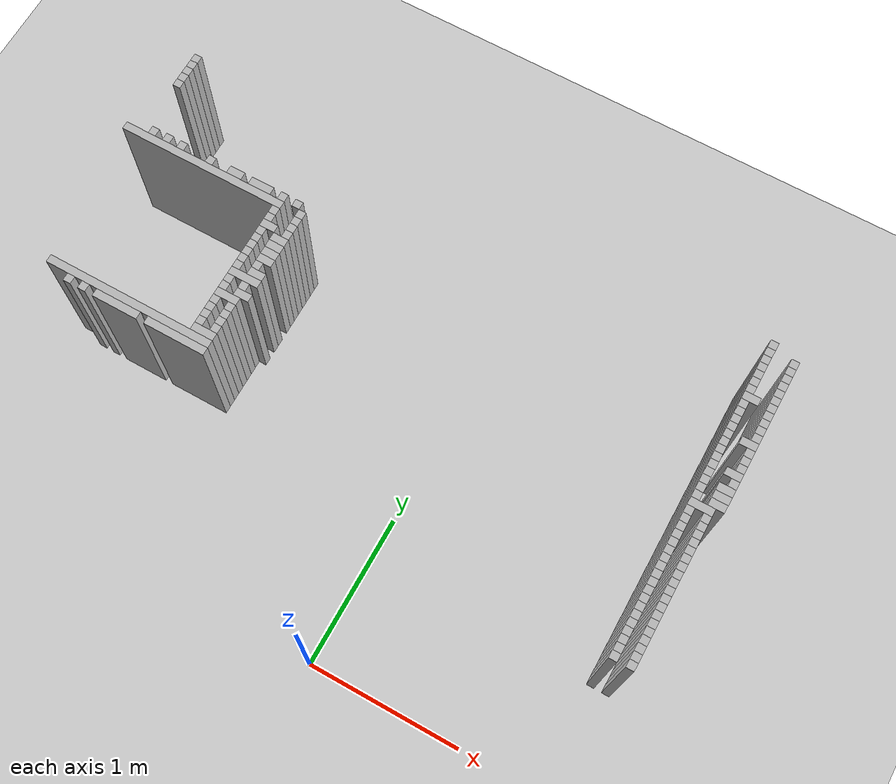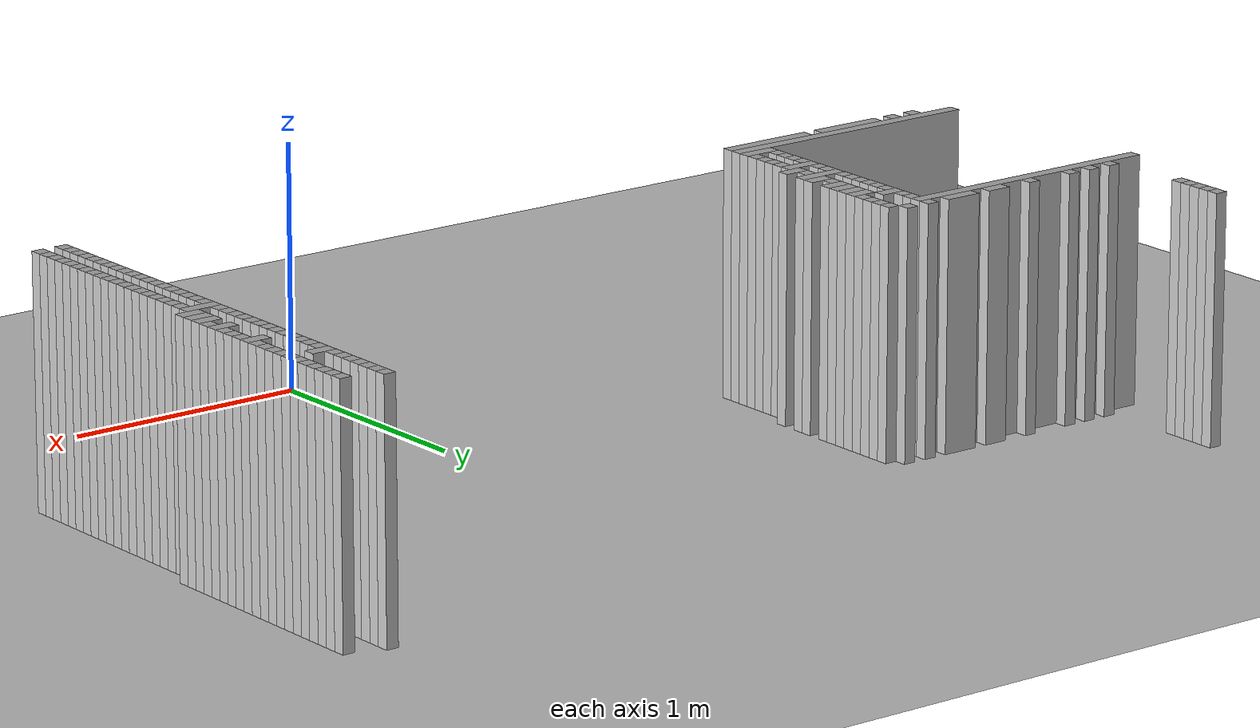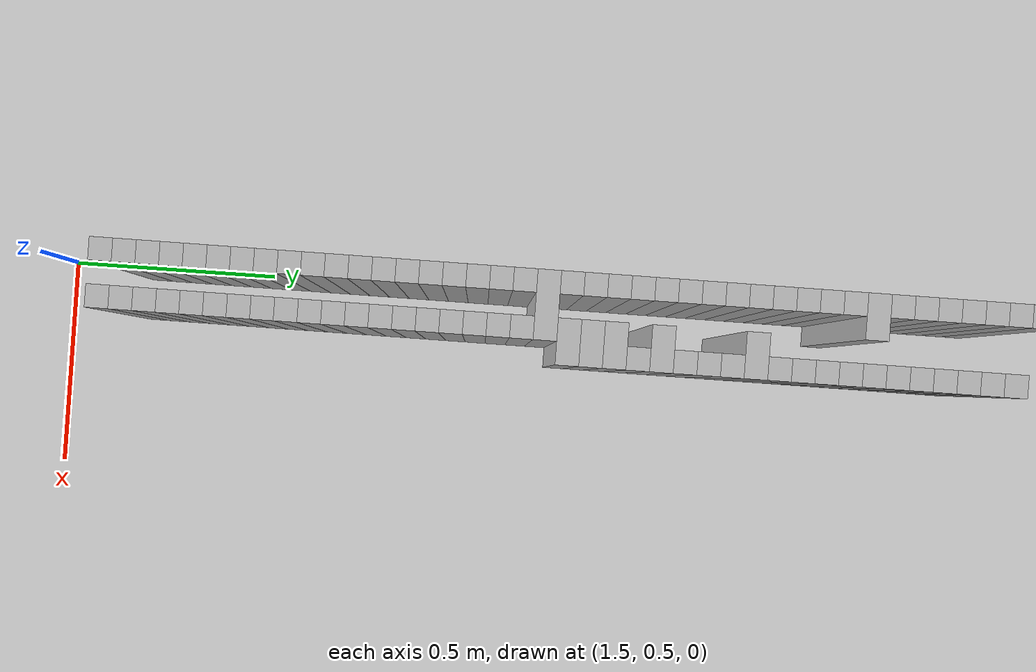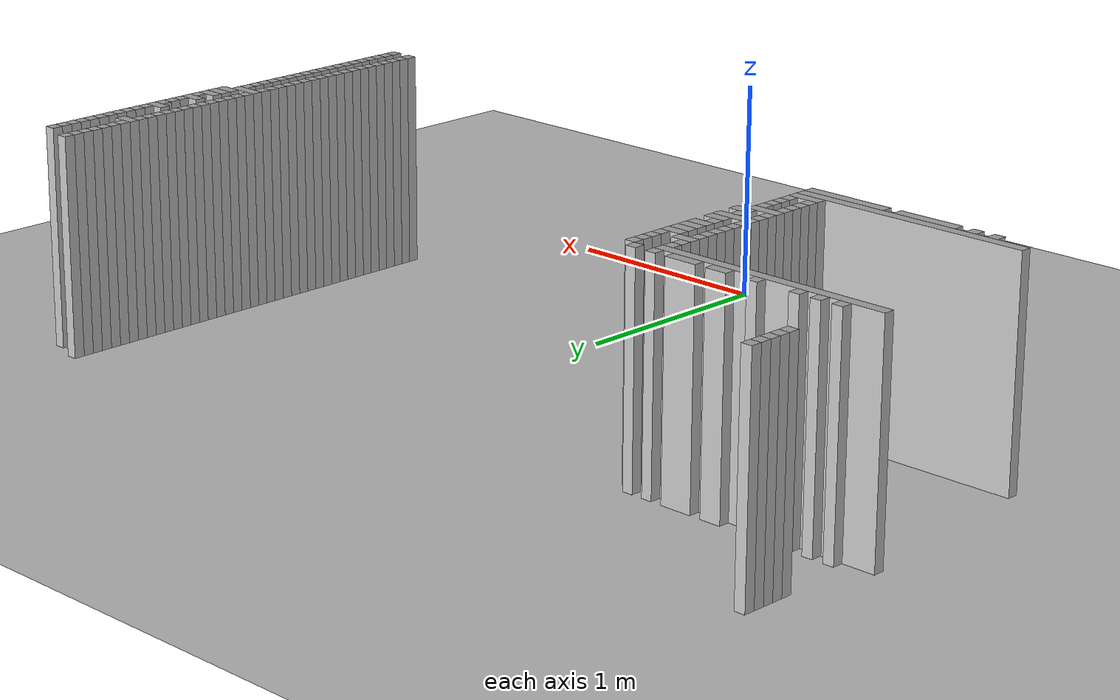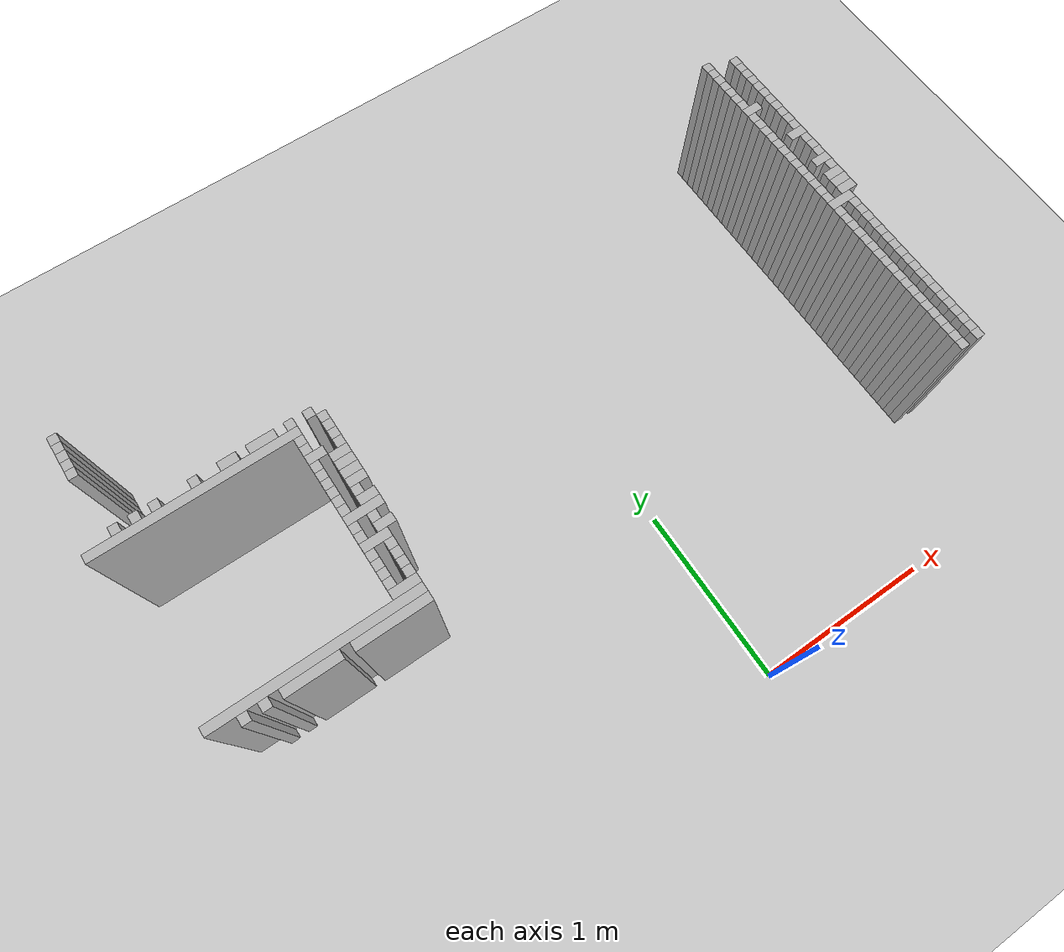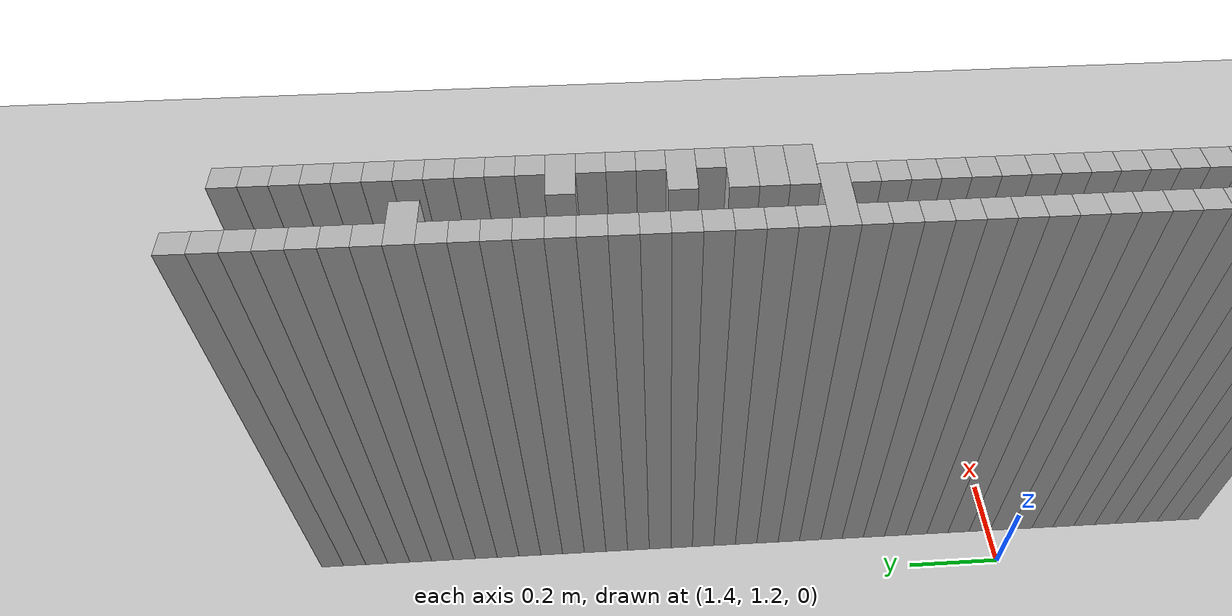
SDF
<sdf version="1.6">
 <world name="udh1_world">
  <include><uri>model://ground_plane</uri></include>
  <include><uri>model://sun</uri></include>
  <model name="wall_971">
   <static>true</static>
   <pose>-2.344999999999999 2.7200000000000006 0.5 0 0 0</pose>
   <link name="link">
    <collision name="col"><geometry><box><size>0.05 0.05 1</size></box></geometry></collision>
    <visual name="vis"><geometry><box><size>0.05 0.05 1</size></box></geometry></visual>
   </link>
  </model>
  <model name="wall_972">
   <static>true</static>
   <pose>1.5050000000000008 2.7200000000000006 0.5 0 0 0</pose>
   <link name="link">
    <collision name="col"><geometry><box><size>0.05 0.05 1</size></box></geometry></collision>
    <visual name="vis"><geometry><box><size>0.05 0.05 1</size></box></geometry></visual>
   </link>
  </model>
  <model name="wall_981">
   <static>true</static>
   <pose>-2.344999999999999 2.67 0.5 0 0 0</pose>
   <link name="link">
    <collision name="col"><geometry><box><size>0.05 0.05 1</size></box></geometry></collision>
    <visual name="vis"><geometry><box><size>0.05 0.05 1</size></box></geometry></visual>
   </link>
  </model>
  <model name="wall_982">
   <static>true</static>
   <pose>1.5050000000000008 2.67 0.5 0 0 0</pose>
   <link name="link">
    <collision name="col"><geometry><box><size>0.05 0.05 1</size></box></geometry></collision>
    <visual name="vis"><geometry><box><size>0.05 0.05 1</size></box></geometry></visual>
   </link>
  </model>
  <model name="wall_983">
   <static>true</static>
   <pose>1.6550000000000011 2.67 0.5 0 0 0</pose>
   <link name="link">
    <collision name="col"><geometry><box><size>0.05 0.05 1</size></box></geometry></collision>
    <visual name="vis"><geometry><box><size>0.05 0.05 1</size></box></geometry></visual>
   </link>
  </model>
  <model name="wall_991">
   <static>true</static>
   <pose>-2.344999999999999 2.619999999999999 0.5 0 0 0</pose>
   <link name="link">
    <collision name="col"><geometry><box><size>0.05 0.05 1</size></box></geometry></collision>
    <visual name="vis"><geometry><box><size>0.05 0.05 1</size></box></geometry></visual>
   </link>
  </model>
  <model name="wall_992">
   <static>true</static>
   <pose>1.5050000000000008 2.619999999999999 0.5 0 0 0</pose>
   <link name="link">
    <collision name="col"><geometry><box><size>0.05 0.05 1</size></box></geometry></collision>
    <visual name="vis"><geometry><box><size>0.05 0.05 1</size></box></geometry></visual>
   </link>
  </model>
  <model name="wall_993">
   <static>true</static>
   <pose>1.6550000000000011 2.619999999999999 0.5 0 0 0</pose>
   <link name="link">
    <collision name="col"><geometry><box><size>0.05 0.05 1</size></box></geometry></collision>
    <visual name="vis"><geometry><box><size>0.05 0.05 1</size></box></geometry></visual>
   </link>
  </model>
  <model name="wall_1001">
   <static>true</static>
   <pose>-2.344999999999999 2.5700000000000003 0.5 0 0 0</pose>
   <link name="link">
    <collision name="col"><geometry><box><size>0.05 0.05 1</size></box></geometry></collision>
    <visual name="vis"><geometry><box><size>0.05 0.05 1</size></box></geometry></visual>
   </link>
  </model>
  <model name="wall_1002">
   <static>true</static>
   <pose>1.5050000000000008 2.5700000000000003 0.5 0 0 0</pose>
   <link name="link">
    <collision name="col"><geometry><box><size>0.05 0.05 1</size></box></geometry></collision>
    <visual name="vis"><geometry><box><size>0.05 0.05 1</size></box></geometry></visual>
   </link>
  </model>
  <model name="wall_1003">
   <static>true</static>
   <pose>1.6550000000000011 2.5700000000000003 0.5 0 0 0</pose>
   <link name="link">
    <collision name="col"><geometry><box><size>0.05 0.05 1</size></box></geometry></collision>
    <visual name="vis"><geometry><box><size>0.05 0.05 1</size></box></geometry></visual>
   </link>
  </model>
  <model name="wall_1011">
   <static>true</static>
   <pose>-2.344999999999999 2.5199999999999996 0.5 0 0 0</pose>
   <link name="link">
    <collision name="col"><geometry><box><size>0.05 0.05 1</size></box></geometry></collision>
    <visual name="vis"><geometry><box><size>0.05 0.05 1</size></box></geometry></visual>
   </link>
  </model>
  <model name="wall_1012">
   <static>true</static>
   <pose>1.5050000000000008 2.5199999999999996 0.5 0 0 0</pose>
   <link name="link">
    <collision name="col"><geometry><box><size>0.05 0.05 1</size></box></geometry></collision>
    <visual name="vis"><geometry><box><size>0.05 0.05 1</size></box></geometry></visual>
   </link>
  </model>
  <model name="wall_1013">
   <static>true</static>
   <pose>1.6550000000000011 2.5199999999999996 0.5 0 0 0</pose>
   <link name="link">
    <collision name="col"><geometry><box><size>0.05 0.05 1</size></box></geometry></collision>
    <visual name="vis"><geometry><box><size>0.05 0.05 1</size></box></geometry></visual>
   </link>
  </model>
  <model name="wall_1022">
   <static>true</static>
   <pose>1.5050000000000008 2.4700000000000006 0.5 0 0 0</pose>
   <link name="link">
    <collision name="col"><geometry><box><size>0.05 0.05 1</size></box></geometry></collision>
    <visual name="vis"><geometry><box><size>0.05 0.05 1</size></box></geometry></visual>
   </link>
  </model>
  <model name="wall_1023">
   <static>true</static>
   <pose>1.6550000000000011 2.4700000000000006 0.5 0 0 0</pose>
   <link name="link">
    <collision name="col"><geometry><box><size>0.05 0.05 1</size></box></geometry></collision>
    <visual name="vis"><geometry><box><size>0.05 0.05 1</size></box></geometry></visual>
   </link>
  </model>
  <model name="wall_1032">
   <static>true</static>
   <pose>1.5050000000000008 2.42 0.5 0 0 0</pose>
   <link name="link">
    <collision name="col"><geometry><box><size>0.05 0.05 1</size></box></geometry></collision>
    <visual name="vis"><geometry><box><size>0.05 0.05 1</size></box></geometry></visual>
   </link>
  </model>
  <model name="wall_1033">
   <static>true</static>
   <pose>1.6550000000000011 2.42 0.5 0 0 0</pose>
   <link name="link">
    <collision name="col"><geometry><box><size>0.05 0.05 1</size></box></geometry></collision>
    <visual name="vis"><geometry><box><size>0.05 0.05 1</size></box></geometry></visual>
   </link>
  </model>
  <model name="wall_1042">
   <static>true</static>
   <pose>1.5300000000000011 2.369999999999999 0.5 0 0 0</pose>
   <link name="link">
    <collision name="col"><geometry><box><size>0.1 0.05 1</size></box></geometry></collision>
    <visual name="vis"><geometry><box><size>0.1 0.05 1</size></box></geometry></visual>
   </link>
  </model>
  <model name="wall_1043">
   <static>true</static>
   <pose>1.6550000000000011 2.369999999999999 0.5 0 0 0</pose>
   <link name="link">
    <collision name="col"><geometry><box><size>0.05 0.05 1</size></box></geometry></collision>
    <visual name="vis"><geometry><box><size>0.05 0.05 1</size></box></geometry></visual>
   </link>
  </model>
  <model name="wall_1052">
   <static>true</static>
   <pose>1.5050000000000008 2.3200000000000003 0.5 0 0 0</pose>
   <link name="link">
    <collision name="col"><geometry><box><size>0.05 0.05 1</size></box></geometry></collision>
    <visual name="vis"><geometry><box><size>0.05 0.05 1</size></box></geometry></visual>
   </link>
  </model>
  <model name="wall_1053">
   <static>true</static>
   <pose>1.6550000000000011 2.3200000000000003 0.5 0 0 0</pose>
   <link name="link">
    <collision name="col"><geometry><box><size>0.05 0.05 1</size></box></geometry></collision>
    <visual name="vis"><geometry><box><size>0.05 0.05 1</size></box></geometry></visual>
   </link>
  </model>
  <model name="wall_1062">
   <static>true</static>
   <pose>1.5050000000000008 2.2699999999999996 0.5 0 0 0</pose>
   <link name="link">
    <collision name="col"><geometry><box><size>0.05 0.05 1</size></box></geometry></collision>
    <visual name="vis"><geometry><box><size>0.05 0.05 1</size></box></geometry></visual>
   </link>
  </model>
  <model name="wall_1063">
   <static>true</static>
   <pose>1.6550000000000011 2.2699999999999996 0.5 0 0 0</pose>
   <link name="link">
    <collision name="col"><geometry><box><size>0.05 0.05 1</size></box></geometry></collision>
    <visual name="vis"><geometry><box><size>0.05 0.05 1</size></box></geometry></visual>
   </link>
  </model>
  <model name="wall_1072">
   <static>true</static>
   <pose>1.5050000000000008 2.2200000000000006 0.5 0 0 0</pose>
   <link name="link">
    <collision name="col"><geometry><box><size>0.05 0.05 1</size></box></geometry></collision>
    <visual name="vis"><geometry><box><size>0.05 0.05 1</size></box></geometry></visual>
   </link>
  </model>
  <model name="wall_1073">
   <static>true</static>
   <pose>1.6550000000000011 2.2200000000000006 0.5 0 0 0</pose>
   <link name="link">
    <collision name="col"><geometry><box><size>0.05 0.05 1</size></box></geometry></collision>
    <visual name="vis"><geometry><box><size>0.05 0.05 1</size></box></geometry></visual>
   </link>
  </model>
  <model name="wall_1081">
   <static>true</static>
   <pose>-2.294999999999999 2.17 0.5 0 0 0</pose>
   <link name="link">
    <collision name="col"><geometry><box><size>0.05 0.05 1</size></box></geometry></collision>
    <visual name="vis"><geometry><box><size>0.05 0.05 1</size></box></geometry></visual>
   </link>
  </model>
  <model name="wall_1082">
   <static>true</static>
   <pose>-2.1949999999999994 2.17 0.5 0 0 0</pose>
   <link name="link">
    <collision name="col"><geometry><box><size>0.05 0.05 1</size></box></geometry></collision>
    <visual name="vis"><geometry><box><size>0.05 0.05 1</size></box></geometry></visual>
   </link>
  </model>
  <model name="wall_1083">
   <static>true</static>
   <pose>-2.094999999999999 2.17 0.5 0 0 0</pose>
   <link name="link">
    <collision name="col"><geometry><box><size>0.05 0.05 1</size></box></geometry></collision>
    <visual name="vis"><geometry><box><size>0.05 0.05 1</size></box></geometry></visual>
   </link>
  </model>
  <model name="wall_1084">
   <static>true</static>
   <pose>-1.8949999999999996 2.17 0.5 0 0 0</pose>
   <link name="link">
    <collision name="col"><geometry><box><size>0.05 0.05 1</size></box></geometry></collision>
    <visual name="vis"><geometry><box><size>0.05 0.05 1</size></box></geometry></visual>
   </link>
  </model>
  <model name="wall_1085">
   <static>true</static>
   <pose>-1.7199999999999989 2.17 0.5 0 0 0</pose>
   <link name="link">
    <collision name="col"><geometry><box><size>0.1 0.05 1</size></box></geometry></collision>
    <visual name="vis"><geometry><box><size>0.1 0.05 1</size></box></geometry></visual>
   </link>
  </model>
  <model name="wall_1086">
   <static>true</static>
   <pose>-1.544999999999999 2.17 0.5 0 0 0</pose>
   <link name="link">
    <collision name="col"><geometry><box><size>0.15000000000000002 0.05 1</size></box></geometry></collision>
    <visual name="vis"><geometry><box><size>0.15000000000000002 0.05 1</size></box></geometry></visual>
   </link>
  </model>
  <model name="wall_1087">
   <static>true</static>
   <pose>-1.3949999999999996 2.17 0.5 0 0 0</pose>
   <link name="link">
    <collision name="col"><geometry><box><size>0.05 0.05 1</size></box></geometry></collision>
    <visual name="vis"><geometry><box><size>0.05 0.05 1</size></box></geometry></visual>
   </link>
  </model>
  <model name="wall_1088">
   <static>true</static>
   <pose>-1.294999999999999 2.17 0.5 0 0 0</pose>
   <link name="link">
    <collision name="col"><geometry><box><size>0.05 0.05 1</size></box></geometry></collision>
    <visual name="vis"><geometry><box><size>0.05 0.05 1</size></box></geometry></visual>
   </link>
  </model>
  <model name="wall_1089">
   <static>true</static>
   <pose>1.5050000000000008 2.17 0.5 0 0 0</pose>
   <link name="link">
    <collision name="col"><geometry><box><size>0.05 0.05 1</size></box></geometry></collision>
    <visual name="vis"><geometry><box><size>0.05 0.05 1</size></box></geometry></visual>
   </link>
  </model>
  <model name="wall_1090">
   <static>true</static>
   <pose>1.6550000000000011 2.17 0.5 0 0 0</pose>
   <link name="link">
    <collision name="col"><geometry><box><size>0.05 0.05 1</size></box></geometry></collision>
    <visual name="vis"><geometry><box><size>0.05 0.05 1</size></box></geometry></visual>
   </link>
  </model>
  <model name="wall_1097">
   <static>true</static>
   <pose>-1.919999999999999 2.119999999999999 0.5 0 0 0</pose>
   <link name="link">
    <collision name="col"><geometry><box><size>1.1 0.05 1</size></box></geometry></collision>
    <visual name="vis"><geometry><box><size>1.1 0.05 1</size></box></geometry></visual>
   </link>
  </model>
  <model name="wall_1098">
   <static>true</static>
   <pose>-1.2449999999999992 2.119999999999999 0.5 0 0 0</pose>
   <link name="link">
    <collision name="col"><geometry><box><size>0.05 0.05 1</size></box></geometry></collision>
    <visual name="vis"><geometry><box><size>0.05 0.05 1</size></box></geometry></visual>
   </link>
  </model>
  <model name="wall_1099">
   <static>true</static>
   <pose>1.5050000000000008 2.119999999999999 0.5 0 0 0</pose>
   <link name="link">
    <collision name="col"><geometry><box><size>0.05 0.05 1</size></box></geometry></collision>
    <visual name="vis"><geometry><box><size>0.05 0.05 1</size></box></geometry></visual>
   </link>
  </model>
  <model name="wall_1100">
   <static>true</static>
   <pose>1.6300000000000008 2.119999999999999 0.5 0 0 0</pose>
   <link name="link">
    <collision name="col"><geometry><box><size>0.1 0.05 1</size></box></geometry></collision>
    <visual name="vis"><geometry><box><size>0.1 0.05 1</size></box></geometry></visual>
   </link>
  </model>
  <model name="wall_1107">
   <static>true</static>
   <pose>-1.3949999999999996 2.0700000000000003 0.5 0 0 0</pose>
   <link name="link">
    <collision name="col"><geometry><box><size>0.05 0.05 1</size></box></geometry></collision>
    <visual name="vis"><geometry><box><size>0.05 0.05 1</size></box></geometry></visual>
   </link>
  </model>
  <model name="wall_1108">
   <static>true</static>
   <pose>-1.2449999999999992 2.0700000000000003 0.5 0 0 0</pose>
   <link name="link">
    <collision name="col"><geometry><box><size>0.05 0.05 1</size></box></geometry></collision>
    <visual name="vis"><geometry><box><size>0.05 0.05 1</size></box></geometry></visual>
   </link>
  </model>
  <model name="wall_1109">
   <static>true</static>
   <pose>1.5050000000000008 2.0700000000000003 0.5 0 0 0</pose>
   <link name="link">
    <collision name="col"><geometry><box><size>0.05 0.05 1</size></box></geometry></collision>
    <visual name="vis"><geometry><box><size>0.05 0.05 1</size></box></geometry></visual>
   </link>
  </model>
  <model name="wall_1110">
   <static>true</static>
   <pose>1.6550000000000011 2.0700000000000003 0.5 0 0 0</pose>
   <link name="link">
    <collision name="col"><geometry><box><size>0.05 0.05 1</size></box></geometry></collision>
    <visual name="vis"><geometry><box><size>0.05 0.05 1</size></box></geometry></visual>
   </link>
  </model>
  <model name="wall_1117">
   <static>true</static>
   <pose>-1.3949999999999996 2.0199999999999996 0.5 0 0 0</pose>
   <link name="link">
    <collision name="col"><geometry><box><size>0.05 0.05 1</size></box></geometry></collision>
    <visual name="vis"><geometry><box><size>0.05 0.05 1</size></box></geometry></visual>
   </link>
  </model>
  <model name="wall_1118">
   <static>true</static>
   <pose>-1.2449999999999992 2.0199999999999996 0.5 0 0 0</pose>
   <link name="link">
    <collision name="col"><geometry><box><size>0.05 0.05 1</size></box></geometry></collision>
    <visual name="vis"><geometry><box><size>0.05 0.05 1</size></box></geometry></visual>
   </link>
  </model>
  <model name="wall_1119">
   <static>true</static>
   <pose>1.5050000000000008 2.0199999999999996 0.5 0 0 0</pose>
   <link name="link">
    <collision name="col"><geometry><box><size>0.05 0.05 1</size></box></geometry></collision>
    <visual name="vis"><geometry><box><size>0.05 0.05 1</size></box></geometry></visual>
   </link>
  </model>
  <model name="wall_1120">
   <static>true</static>
   <pose>1.6550000000000011 2.0199999999999996 0.5 0 0 0</pose>
   <link name="link">
    <collision name="col"><geometry><box><size>0.05 0.05 1</size></box></geometry></collision>
    <visual name="vis"><geometry><box><size>0.05 0.05 1</size></box></geometry></visual>
   </link>
  </model>
  <model name="wall_1127">
   <static>true</static>
   <pose>-1.3699999999999992 1.9700000000000006 0.5 0 0 0</pose>
   <link name="link">
    <collision name="col"><geometry><box><size>0.1 0.05 1</size></box></geometry></collision>
    <visual name="vis"><geometry><box><size>0.1 0.05 1</size></box></geometry></visual>
   </link>
  </model>
  <model name="wall_1128">
   <static>true</static>
   <pose>-1.2449999999999992 1.9700000000000006 0.5 0 0 0</pose>
   <link name="link">
    <collision name="col"><geometry><box><size>0.05 0.05 1</size></box></geometry></collision>
    <visual name="vis"><geometry><box><size>0.05 0.05 1</size></box></geometry></visual>
   </link>
  </model>
  <model name="wall_1129">
   <static>true</static>
   <pose>1.5050000000000008 1.9700000000000006 0.5 0 0 0</pose>
   <link name="link">
    <collision name="col"><geometry><box><size>0.05 0.05 1</size></box></geometry></collision>
    <visual name="vis"><geometry><box><size>0.05 0.05 1</size></box></geometry></visual>
   </link>
  </model>
  <model name="wall_1130">
   <static>true</static>
   <pose>1.6550000000000011 1.9700000000000006 0.5 0 0 0</pose>
   <link name="link">
    <collision name="col"><geometry><box><size>0.05 0.05 1</size></box></geometry></collision>
    <visual name="vis"><geometry><box><size>0.05 0.05 1</size></box></geometry></visual>
   </link>
  </model>
  <model name="wall_1137">
   <static>true</static>
   <pose>-1.3949999999999996 1.92 0.5 0 0 0</pose>
   <link name="link">
    <collision name="col"><geometry><box><size>0.05 0.05 1</size></box></geometry></collision>
    <visual name="vis"><geometry><box><size>0.05 0.05 1</size></box></geometry></visual>
   </link>
  </model>
  <model name="wall_1138">
   <static>true</static>
   <pose>-1.2699999999999996 1.92 0.5 0 0 0</pose>
   <link name="link">
    <collision name="col"><geometry><box><size>0.1 0.05 1</size></box></geometry></collision>
    <visual name="vis"><geometry><box><size>0.1 0.05 1</size></box></geometry></visual>
   </link>
  </model>
  <model name="wall_1139">
   <static>true</static>
   <pose>1.5050000000000008 1.92 0.5 0 0 0</pose>
   <link name="link">
    <collision name="col"><geometry><box><size>0.05 0.05 1</size></box></geometry></collision>
    <visual name="vis"><geometry><box><size>0.05 0.05 1</size></box></geometry></visual>
   </link>
  </model>
  <model name="wall_1140">
   <static>true</static>
   <pose>1.6300000000000008 1.92 0.5 0 0 0</pose>
   <link name="link">
    <collision name="col"><geometry><box><size>0.1 0.05 1</size></box></geometry></collision>
    <visual name="vis"><geometry><box><size>0.1 0.05 1</size></box></geometry></visual>
   </link>
  </model>
  <model name="wall_1147">
   <static>true</static>
   <pose>-1.3949999999999996 1.8699999999999992 0.5 0 0 0</pose>
   <link name="link">
    <collision name="col"><geometry><box><size>0.05 0.05 1</size></box></geometry></collision>
    <visual name="vis"><geometry><box><size>0.05 0.05 1</size></box></geometry></visual>
   </link>
  </model>
  <model name="wall_1148">
   <static>true</static>
   <pose>-1.2699999999999996 1.8699999999999992 0.5 0 0 0</pose>
   <link name="link">
    <collision name="col"><geometry><box><size>0.1 0.05 1</size></box></geometry></collision>
    <visual name="vis"><geometry><box><size>0.1 0.05 1</size></box></geometry></visual>
   </link>
  </model>
  <model name="wall_1149">
   <static>true</static>
   <pose>1.5050000000000008 1.8699999999999992 0.5 0 0 0</pose>
   <link name="link">
    <collision name="col"><geometry><box><size>0.05 0.05 1</size></box></geometry></collision>
    <visual name="vis"><geometry><box><size>0.05 0.05 1</size></box></geometry></visual>
   </link>
  </model>
  <model name="wall_1150">
   <static>true</static>
   <pose>1.6550000000000011 1.8699999999999992 0.5 0 0 0</pose>
   <link name="link">
    <collision name="col"><geometry><box><size>0.05 0.05 1</size></box></geometry></collision>
    <visual name="vis"><geometry><box><size>0.05 0.05 1</size></box></geometry></visual>
   </link>
  </model>
  <model name="wall_1157">
   <static>true</static>
   <pose>-1.3949999999999996 1.8200000000000003 0.5 0 0 0</pose>
   <link name="link">
    <collision name="col"><geometry><box><size>0.05 0.05 1</size></box></geometry></collision>
    <visual name="vis"><geometry><box><size>0.05 0.05 1</size></box></geometry></visual>
   </link>
  </model>
  <model name="wall_1158">
   <static>true</static>
   <pose>-1.2699999999999996 1.8200000000000003 0.5 0 0 0</pose>
   <link name="link">
    <collision name="col"><geometry><box><size>0.1 0.05 1</size></box></geometry></collision>
    <visual name="vis"><geometry><box><size>0.1 0.05 1</size></box></geometry></visual>
   </link>
  </model>
  <model name="wall_1159">
   <static>true</static>
   <pose>1.5050000000000008 1.8200000000000003 0.5 0 0 0</pose>
   <link name="link">
    <collision name="col"><geometry><box><size>0.05 0.05 1</size></box></geometry></collision>
    <visual name="vis"><geometry><box><size>0.05 0.05 1</size></box></geometry></visual>
   </link>
  </model>
  <model name="wall_1160">
   <static>true</static>
   <pose>1.6300000000000008 1.8200000000000003 0.5 0 0 0</pose>
   <link name="link">
    <collision name="col"><geometry><box><size>0.1 0.05 1</size></box></geometry></collision>
    <visual name="vis"><geometry><box><size>0.1 0.05 1</size></box></geometry></visual>
   </link>
  </model>
  <model name="wall_1167">
   <static>true</static>
   <pose>-1.3949999999999996 1.7699999999999996 0.5 0 0 0</pose>
   <link name="link">
    <collision name="col"><geometry><box><size>0.05 0.05 1</size></box></geometry></collision>
    <visual name="vis"><geometry><box><size>0.05 0.05 1</size></box></geometry></visual>
   </link>
  </model>
  <model name="wall_1168">
   <static>true</static>
   <pose>-1.2699999999999996 1.7699999999999996 0.5 0 0 0</pose>
   <link name="link">
    <collision name="col"><geometry><box><size>0.1 0.05 1</size></box></geometry></collision>
    <visual name="vis"><geometry><box><size>0.1 0.05 1</size></box></geometry></visual>
   </link>
  </model>
  <model name="wall_1169">
   <static>true</static>
   <pose>1.5050000000000008 1.7699999999999996 0.5 0 0 0</pose>
   <link name="link">
    <collision name="col"><geometry><box><size>0.05 0.05 1</size></box></geometry></collision>
    <visual name="vis"><geometry><box><size>0.05 0.05 1</size></box></geometry></visual>
   </link>
  </model>
  <model name="wall_1170">
   <static>true</static>
   <pose>1.6300000000000008 1.7699999999999996 0.5 0 0 0</pose>
   <link name="link">
    <collision name="col"><geometry><box><size>0.1 0.05 1</size></box></geometry></collision>
    <visual name="vis"><geometry><box><size>0.1 0.05 1</size></box></geometry></visual>
   </link>
  </model>
  <model name="wall_1177">
   <static>true</static>
   <pose>-1.3949999999999996 1.7200000000000006 0.5 0 0 0</pose>
   <link name="link">
    <collision name="col"><geometry><box><size>0.05 0.05 1</size></box></geometry></collision>
    <visual name="vis"><geometry><box><size>0.05 0.05 1</size></box></geometry></visual>
   </link>
  </model>
  <model name="wall_1178">
   <static>true</static>
   <pose>-1.294999999999999 1.7200000000000006 0.5 0 0 0</pose>
   <link name="link">
    <collision name="col"><geometry><box><size>0.05 0.05 1</size></box></geometry></collision>
    <visual name="vis"><geometry><box><size>0.05 0.05 1</size></box></geometry></visual>
   </link>
  </model>
  <model name="wall_1179">
   <static>true</static>
   <pose>1.5050000000000008 1.7200000000000006 0.5 0 0 0</pose>
   <link name="link">
    <collision name="col"><geometry><box><size>0.05 0.05 1</size></box></geometry></collision>
    <visual name="vis"><geometry><box><size>0.05 0.05 1</size></box></geometry></visual>
   </link>
  </model>
  <model name="wall_1180">
   <static>true</static>
   <pose>1.6300000000000008 1.7200000000000006 0.5 0 0 0</pose>
   <link name="link">
    <collision name="col"><geometry><box><size>0.1 0.05 1</size></box></geometry></collision>
    <visual name="vis"><geometry><box><size>0.1 0.05 1</size></box></geometry></visual>
   </link>
  </model>
  <model name="wall_1187">
   <static>true</static>
   <pose>-1.3949999999999996 1.67 0.5 0 0 0</pose>
   <link name="link">
    <collision name="col"><geometry><box><size>0.05 0.05 1</size></box></geometry></collision>
    <visual name="vis"><geometry><box><size>0.05 0.05 1</size></box></geometry></visual>
   </link>
  </model>
  <model name="wall_1188">
   <static>true</static>
   <pose>-1.2699999999999996 1.67 0.5 0 0 0</pose>
   <link name="link">
    <collision name="col"><geometry><box><size>0.1 0.05 1</size></box></geometry></collision>
    <visual name="vis"><geometry><box><size>0.1 0.05 1</size></box></geometry></visual>
   </link>
  </model>
  <model name="wall_1189">
   <static>true</static>
   <pose>1.5550000000000015 1.67 0.5 0 0 0</pose>
   <link name="link">
    <collision name="col"><geometry><box><size>0.15000000000000002 0.05 1</size></box></geometry></collision>
    <visual name="vis"><geometry><box><size>0.15000000000000002 0.05 1</size></box></geometry></visual>
   </link>
  </model>
  <model name="wall_1196">
   <static>true</static>
   <pose>-1.3199999999999994 1.6199999999999992 0.5 0 0 0</pose>
   <link name="link">
    <collision name="col"><geometry><box><size>0.2 0.05 1</size></box></geometry></collision>
    <visual name="vis"><geometry><box><size>0.2 0.05 1</size></box></geometry></visual>
   </link>
  </model>
  <model name="wall_1197">
   <static>true</static>
   <pose>1.5050000000000008 1.6199999999999992 0.5 0 0 0</pose>
   <link name="link">
    <collision name="col"><geometry><box><size>0.05 0.05 1</size></box></geometry></collision>
    <visual name="vis"><geometry><box><size>0.05 0.05 1</size></box></geometry></visual>
   </link>
  </model>
  <model name="wall_1198">
   <static>true</static>
   <pose>1.6050000000000004 1.6199999999999992 0.5 0 0 0</pose>
   <link name="link">
    <collision name="col"><geometry><box><size>0.05 0.05 1</size></box></geometry></collision>
    <visual name="vis"><geometry><box><size>0.05 0.05 1</size></box></geometry></visual>
   </link>
  </model>
  <model name="wall_1205">
   <static>true</static>
   <pose>-1.3949999999999996 1.5700000000000003 0.5 0 0 0</pose>
   <link name="link">
    <collision name="col"><geometry><box><size>0.05 0.05 1</size></box></geometry></collision>
    <visual name="vis"><geometry><box><size>0.05 0.05 1</size></box></geometry></visual>
   </link>
  </model>
  <model name="wall_1206">
   <static>true</static>
   <pose>-1.294999999999999 1.5700000000000003 0.5 0 0 0</pose>
   <link name="link">
    <collision name="col"><geometry><box><size>0.05 0.05 1</size></box></geometry></collision>
    <visual name="vis"><geometry><box><size>0.05 0.05 1</size></box></geometry></visual>
   </link>
  </model>
  <model name="wall_1207">
   <static>true</static>
   <pose>1.5050000000000008 1.5700000000000003 0.5 0 0 0</pose>
   <link name="link">
    <collision name="col"><geometry><box><size>0.05 0.05 1</size></box></geometry></collision>
    <visual name="vis"><geometry><box><size>0.05 0.05 1</size></box></geometry></visual>
   </link>
  </model>
  <model name="wall_1208">
   <static>true</static>
   <pose>1.6050000000000004 1.5700000000000003 0.5 0 0 0</pose>
   <link name="link">
    <collision name="col"><geometry><box><size>0.05 0.05 1</size></box></geometry></collision>
    <visual name="vis"><geometry><box><size>0.05 0.05 1</size></box></geometry></visual>
   </link>
  </model>
  <model name="wall_1215">
   <static>true</static>
   <pose>-1.3949999999999996 1.5199999999999996 0.5 0 0 0</pose>
   <link name="link">
    <collision name="col"><geometry><box><size>0.05 0.05 1</size></box></geometry></collision>
    <visual name="vis"><geometry><box><size>0.05 0.05 1</size></box></geometry></visual>
   </link>
  </model>
  <model name="wall_1216">
   <static>true</static>
   <pose>-1.2699999999999996 1.5199999999999996 0.5 0 0 0</pose>
   <link name="link">
    <collision name="col"><geometry><box><size>0.1 0.05 1</size></box></geometry></collision>
    <visual name="vis"><geometry><box><size>0.1 0.05 1</size></box></geometry></visual>
   </link>
  </model>
  <model name="wall_1217">
   <static>true</static>
   <pose>1.5050000000000008 1.5199999999999996 0.5 0 0 0</pose>
   <link name="link">
    <collision name="col"><geometry><box><size>0.05 0.05 1</size></box></geometry></collision>
    <visual name="vis"><geometry><box><size>0.05 0.05 1</size></box></geometry></visual>
   </link>
  </model>
  <model name="wall_1218">
   <static>true</static>
   <pose>1.6050000000000004 1.5199999999999996 0.5 0 0 0</pose>
   <link name="link">
    <collision name="col"><geometry><box><size>0.05 0.05 1</size></box></geometry></collision>
    <visual name="vis"><geometry><box><size>0.05 0.05 1</size></box></geometry></visual>
   </link>
  </model>
  <model name="wall_1225">
   <static>true</static>
   <pose>-1.3449999999999989 1.4700000000000006 0.5 0 0 0</pose>
   <link name="link">
    <collision name="col"><geometry><box><size>0.15000000000000002 0.05 1</size></box></geometry></collision>
    <visual name="vis"><geometry><box><size>0.15000000000000002 0.05 1</size></box></geometry></visual>
   </link>
  </model>
  <model name="wall_1226">
   <static>true</static>
   <pose>1.5050000000000008 1.4700000000000006 0.5 0 0 0</pose>
   <link name="link">
    <collision name="col"><geometry><box><size>0.05 0.05 1</size></box></geometry></collision>
    <visual name="vis"><geometry><box><size>0.05 0.05 1</size></box></geometry></visual>
   </link>
  </model>
  <model name="wall_1227">
   <static>true</static>
   <pose>1.6050000000000004 1.4700000000000006 0.5 0 0 0</pose>
   <link name="link">
    <collision name="col"><geometry><box><size>0.05 0.05 1</size></box></geometry></collision>
    <visual name="vis"><geometry><box><size>0.05 0.05 1</size></box></geometry></visual>
   </link>
  </model>
  <model name="wall_1234">
   <static>true</static>
   <pose>-1.3949999999999996 1.42 0.5 0 0 0</pose>
   <link name="link">
    <collision name="col"><geometry><box><size>0.05 0.05 1</size></box></geometry></collision>
    <visual name="vis"><geometry><box><size>0.05 0.05 1</size></box></geometry></visual>
   </link>
  </model>
  <model name="wall_1235">
   <static>true</static>
   <pose>-1.294999999999999 1.42 0.5 0 0 0</pose>
   <link name="link">
    <collision name="col"><geometry><box><size>0.05 0.05 1</size></box></geometry></collision>
    <visual name="vis"><geometry><box><size>0.05 0.05 1</size></box></geometry></visual>
   </link>
  </model>
  <model name="wall_1236">
   <static>true</static>
   <pose>1.5050000000000008 1.42 0.5 0 0 0</pose>
   <link name="link">
    <collision name="col"><geometry><box><size>0.05 0.05 1</size></box></geometry></collision>
    <visual name="vis"><geometry><box><size>0.05 0.05 1</size></box></geometry></visual>
   </link>
  </model>
  <model name="wall_1237">
   <static>true</static>
   <pose>1.6050000000000004 1.42 0.5 0 0 0</pose>
   <link name="link">
    <collision name="col"><geometry><box><size>0.05 0.05 1</size></box></geometry></collision>
    <visual name="vis"><geometry><box><size>0.05 0.05 1</size></box></geometry></visual>
   </link>
  </model>
  <model name="wall_1244">
   <static>true</static>
   <pose>-1.3949999999999996 1.3699999999999992 0.5 0 0 0</pose>
   <link name="link">
    <collision name="col"><geometry><box><size>0.05 0.05 1</size></box></geometry></collision>
    <visual name="vis"><geometry><box><size>0.05 0.05 1</size></box></geometry></visual>
   </link>
  </model>
  <model name="wall_1245">
   <static>true</static>
   <pose>-1.294999999999999 1.3699999999999992 0.5 0 0 0</pose>
   <link name="link">
    <collision name="col"><geometry><box><size>0.05 0.05 1</size></box></geometry></collision>
    <visual name="vis"><geometry><box><size>0.05 0.05 1</size></box></geometry></visual>
   </link>
  </model>
  <model name="wall_1246">
   <static>true</static>
   <pose>1.5050000000000008 1.3699999999999992 0.5 0 0 0</pose>
   <link name="link">
    <collision name="col"><geometry><box><size>0.05 0.05 1</size></box></geometry></collision>
    <visual name="vis"><geometry><box><size>0.05 0.05 1</size></box></geometry></visual>
   </link>
  </model>
  <model name="wall_1247">
   <static>true</static>
   <pose>1.6050000000000004 1.3699999999999992 0.5 0 0 0</pose>
   <link name="link">
    <collision name="col"><geometry><box><size>0.05 0.05 1</size></box></geometry></collision>
    <visual name="vis"><geometry><box><size>0.05 0.05 1</size></box></geometry></visual>
   </link>
  </model>
  <model name="wall_1254">
   <static>true</static>
   <pose>-1.3949999999999996 1.3200000000000003 0.5 0 0 0</pose>
   <link name="link">
    <collision name="col"><geometry><box><size>0.05 0.05 1</size></box></geometry></collision>
    <visual name="vis"><geometry><box><size>0.05 0.05 1</size></box></geometry></visual>
   </link>
  </model>
  <model name="wall_1255">
   <static>true</static>
   <pose>-1.294999999999999 1.3200000000000003 0.5 0 0 0</pose>
   <link name="link">
    <collision name="col"><geometry><box><size>0.05 0.05 1</size></box></geometry></collision>
    <visual name="vis"><geometry><box><size>0.05 0.05 1</size></box></geometry></visual>
   </link>
  </model>
  <model name="wall_1256">
   <static>true</static>
   <pose>1.5050000000000008 1.3200000000000003 0.5 0 0 0</pose>
   <link name="link">
    <collision name="col"><geometry><box><size>0.05 0.05 1</size></box></geometry></collision>
    <visual name="vis"><geometry><box><size>0.05 0.05 1</size></box></geometry></visual>
   </link>
  </model>
  <model name="wall_1257">
   <static>true</static>
   <pose>1.6050000000000004 1.3200000000000003 0.5 0 0 0</pose>
   <link name="link">
    <collision name="col"><geometry><box><size>0.05 0.05 1</size></box></geometry></collision>
    <visual name="vis"><geometry><box><size>0.05 0.05 1</size></box></geometry></visual>
   </link>
  </model>
  <model name="wall_1264">
   <static>true</static>
   <pose>-1.3949999999999996 1.2699999999999996 0.5 0 0 0</pose>
   <link name="link">
    <collision name="col"><geometry><box><size>0.05 0.05 1</size></box></geometry></collision>
    <visual name="vis"><geometry><box><size>0.05 0.05 1</size></box></geometry></visual>
   </link>
  </model>
  <model name="wall_1265">
   <static>true</static>
   <pose>-1.294999999999999 1.2699999999999996 0.5 0 0 0</pose>
   <link name="link">
    <collision name="col"><geometry><box><size>0.05 0.05 1</size></box></geometry></collision>
    <visual name="vis"><geometry><box><size>0.05 0.05 1</size></box></geometry></visual>
   </link>
  </model>
  <model name="wall_1266">
   <static>true</static>
   <pose>1.5050000000000008 1.2699999999999996 0.5 0 0 0</pose>
   <link name="link">
    <collision name="col"><geometry><box><size>0.05 0.05 1</size></box></geometry></collision>
    <visual name="vis"><geometry><box><size>0.05 0.05 1</size></box></geometry></visual>
   </link>
  </model>
  <model name="wall_1267">
   <static>true</static>
   <pose>1.6050000000000004 1.2699999999999996 0.5 0 0 0</pose>
   <link name="link">
    <collision name="col"><geometry><box><size>0.05 0.05 1</size></box></geometry></collision>
    <visual name="vis"><geometry><box><size>0.05 0.05 1</size></box></geometry></visual>
   </link>
  </model>
  <model name="wall_1274">
   <static>true</static>
   <pose>-1.3449999999999989 1.2200000000000006 0.5 0 0 0</pose>
   <link name="link">
    <collision name="col"><geometry><box><size>0.15000000000000002 0.05 1</size></box></geometry></collision>
    <visual name="vis"><geometry><box><size>0.15000000000000002 0.05 1</size></box></geometry></visual>
   </link>
  </model>
  <model name="wall_1275">
   <static>true</static>
   <pose>1.5050000000000008 1.2200000000000006 0.5 0 0 0</pose>
   <link name="link">
    <collision name="col"><geometry><box><size>0.05 0.05 1</size></box></geometry></collision>
    <visual name="vis"><geometry><box><size>0.05 0.05 1</size></box></geometry></visual>
   </link>
  </model>
  <model name="wall_1276">
   <static>true</static>
   <pose>1.6050000000000004 1.2200000000000006 0.5 0 0 0</pose>
   <link name="link">
    <collision name="col"><geometry><box><size>0.05 0.05 1</size></box></geometry></collision>
    <visual name="vis"><geometry><box><size>0.05 0.05 1</size></box></geometry></visual>
   </link>
  </model>
  <model name="wall_1283">
   <static>true</static>
   <pose>-1.8199999999999994 1.17 0.5 0 0 0</pose>
   <link name="link">
    <collision name="col"><geometry><box><size>1.1 0.05 1</size></box></geometry></collision>
    <visual name="vis"><geometry><box><size>1.1 0.05 1</size></box></geometry></visual>
   </link>
  </model>
  <model name="wall_1284">
   <static>true</static>
   <pose>1.5050000000000008 1.17 0.5 0 0 0</pose>
   <link name="link">
    <collision name="col"><geometry><box><size>0.05 0.05 1</size></box></geometry></collision>
    <visual name="vis"><geometry><box><size>0.05 0.05 1</size></box></geometry></visual>
   </link>
  </model>
  <model name="wall_1285">
   <static>true</static>
   <pose>1.6050000000000004 1.17 0.5 0 0 0</pose>
   <link name="link">
    <collision name="col"><geometry><box><size>0.05 0.05 1</size></box></geometry></collision>
    <visual name="vis"><geometry><box><size>0.05 0.05 1</size></box></geometry></visual>
   </link>
  </model>
  <model name="wall_1293">
   <static>true</static>
   <pose>-2.1949999999999994 1.1199999999999992 0.5 0 0 0</pose>
   <link name="link">
    <collision name="col"><geometry><box><size>0.05 0.05 1</size></box></geometry></collision>
    <visual name="vis"><geometry><box><size>0.05 0.05 1</size></box></geometry></visual>
   </link>
  </model>
  <model name="wall_1294">
   <static>true</static>
   <pose>-2.094999999999999 1.1199999999999992 0.5 0 0 0</pose>
   <link name="link">
    <collision name="col"><geometry><box><size>0.05 0.05 1</size></box></geometry></collision>
    <visual name="vis"><geometry><box><size>0.05 0.05 1</size></box></geometry></visual>
   </link>
  </model>
  <model name="wall_1295">
   <static>true</static>
   <pose>-1.8699999999999992 1.1199999999999992 0.5 0 0 0</pose>
   <link name="link">
    <collision name="col"><geometry><box><size>0.30000000000000004 0.05 1</size></box></geometry></collision>
    <visual name="vis"><geometry><box><size>0.30000000000000004 0.05 1</size></box></geometry></visual>
   </link>
  </model>
  <model name="wall_1296">
   <static>true</static>
   <pose>-1.4699999999999989 1.1199999999999992 0.5 0 0 0</pose>
   <link name="link">
    <collision name="col"><geometry><box><size>0.4 0.05 1</size></box></geometry></collision>
    <visual name="vis"><geometry><box><size>0.4 0.05 1</size></box></geometry></visual>
   </link>
  </model>
  <model name="wall_1297">
   <static>true</static>
   <pose>1.5050000000000008 1.1199999999999992 0.5 0 0 0</pose>
   <link name="link">
    <collision name="col"><geometry><box><size>0.05 0.05 1</size></box></geometry></collision>
    <visual name="vis"><geometry><box><size>0.05 0.05 1</size></box></geometry></visual>
   </link>
  </model>
  <model name="wall_1298">
   <static>true</static>
   <pose>1.6050000000000004 1.1199999999999992 0.5 0 0 0</pose>
   <link name="link">
    <collision name="col"><geometry><box><size>0.05 0.05 1</size></box></geometry></collision>
    <visual name="vis"><geometry><box><size>0.05 0.05 1</size></box></geometry></visual>
   </link>
  </model>
  <model name="wall_1306">
   <static>true</static>
   <pose>1.5050000000000008 1.0700000000000003 0.5 0 0 0</pose>
   <link name="link">
    <collision name="col"><geometry><box><size>0.05 0.05 1</size></box></geometry></collision>
    <visual name="vis"><geometry><box><size>0.05 0.05 1</size></box></geometry></visual>
   </link>
  </model>
  <model name="wall_1307">
   <static>true</static>
   <pose>1.6050000000000004 1.0700000000000003 0.5 0 0 0</pose>
   <link name="link">
    <collision name="col"><geometry><box><size>0.05 0.05 1</size></box></geometry></collision>
    <visual name="vis"><geometry><box><size>0.05 0.05 1</size></box></geometry></visual>
   </link>
  </model>
  <model name="wall_1314">
   <static>true</static>
   <pose>1.5050000000000008 1.0199999999999996 0.5 0 0 0</pose>
   <link name="link">
    <collision name="col"><geometry><box><size>0.05 0.05 1</size></box></geometry></collision>
    <visual name="vis"><geometry><box><size>0.05 0.05 1</size></box></geometry></visual>
   </link>
  </model>
  <model name="wall_1315">
   <static>true</static>
   <pose>1.6050000000000004 1.0199999999999996 0.5 0 0 0</pose>
   <link name="link">
    <collision name="col"><geometry><box><size>0.05 0.05 1</size></box></geometry></collision>
    <visual name="vis"><geometry><box><size>0.05 0.05 1</size></box></geometry></visual>
   </link>
  </model>
  <model name="wall_1321">
   <static>true</static>
   <pose>1.5050000000000008 0.9700000000000006 0.5 0 0 0</pose>
   <link name="link">
    <collision name="col"><geometry><box><size>0.05 0.05 1</size></box></geometry></collision>
    <visual name="vis"><geometry><box><size>0.05 0.05 1</size></box></geometry></visual>
   </link>
  </model>
  <model name="wall_1322">
   <static>true</static>
   <pose>1.6050000000000004 0.9700000000000006 0.5 0 0 0</pose>
   <link name="link">
    <collision name="col"><geometry><box><size>0.05 0.05 1</size></box></geometry></collision>
    <visual name="vis"><geometry><box><size>0.05 0.05 1</size></box></geometry></visual>
   </link>
  </model>
  <model name="wall_1328">
   <static>true</static>
   <pose>1.5050000000000008 0.9199999999999999 0.5 0 0 0</pose>
   <link name="link">
    <collision name="col"><geometry><box><size>0.05 0.05 1</size></box></geometry></collision>
    <visual name="vis"><geometry><box><size>0.05 0.05 1</size></box></geometry></visual>
   </link>
  </model>
  <model name="wall_1329">
   <static>true</static>
   <pose>1.6050000000000004 0.9199999999999999 0.5 0 0 0</pose>
   <link name="link">
    <collision name="col"><geometry><box><size>0.05 0.05 1</size></box></geometry></collision>
    <visual name="vis"><geometry><box><size>0.05 0.05 1</size></box></geometry></visual>
   </link>
  </model>
  <model name="wall_1335">
   <static>true</static>
   <pose>1.5050000000000008 0.8699999999999992 0.5 0 0 0</pose>
   <link name="link">
    <collision name="col"><geometry><box><size>0.05 0.05 1</size></box></geometry></collision>
    <visual name="vis"><geometry><box><size>0.05 0.05 1</size></box></geometry></visual>
   </link>
  </model>
  <model name="wall_1336">
   <static>true</static>
   <pose>1.6050000000000004 0.8699999999999992 0.5 0 0 0</pose>
   <link name="link">
    <collision name="col"><geometry><box><size>0.05 0.05 1</size></box></geometry></collision>
    <visual name="vis"><geometry><box><size>0.05 0.05 1</size></box></geometry></visual>
   </link>
  </model>
  <model name="wall_1342">
   <static>true</static>
   <pose>1.5050000000000008 0.8200000000000003 0.5 0 0 0</pose>
   <link name="link">
    <collision name="col"><geometry><box><size>0.05 0.05 1</size></box></geometry></collision>
    <visual name="vis"><geometry><box><size>0.05 0.05 1</size></box></geometry></visual>
   </link>
  </model>
  <model name="wall_1343">
   <static>true</static>
   <pose>1.6050000000000004 0.8200000000000003 0.5 0 0 0</pose>
   <link name="link">
    <collision name="col"><geometry><box><size>0.05 0.05 1</size></box></geometry></collision>
    <visual name="vis"><geometry><box><size>0.05 0.05 1</size></box></geometry></visual>
   </link>
  </model>
  <model name="wall_1350">
   <static>true</static>
   <pose>1.5050000000000008 0.7699999999999996 0.5 0 0 0</pose>
   <link name="link">
    <collision name="col"><geometry><box><size>0.05 0.05 1</size></box></geometry></collision>
    <visual name="vis"><geometry><box><size>0.05 0.05 1</size></box></geometry></visual>
   </link>
  </model>
  <model name="wall_1351">
   <static>true</static>
   <pose>1.6050000000000004 0.7699999999999996 0.5 0 0 0</pose>
   <link name="link">
    <collision name="col"><geometry><box><size>0.05 0.05 1</size></box></geometry></collision>
    <visual name="vis"><geometry><box><size>0.05 0.05 1</size></box></geometry></visual>
   </link>
  </model>
  <model name="wall_1358">
   <static>true</static>
   <pose>1.5050000000000008 0.7200000000000006 0.5 0 0 0</pose>
   <link name="link">
    <collision name="col"><geometry><box><size>0.05 0.05 1</size></box></geometry></collision>
    <visual name="vis"><geometry><box><size>0.05 0.05 1</size></box></geometry></visual>
   </link>
  </model>
  <model name="wall_1359">
   <static>true</static>
   <pose>1.6050000000000004 0.7200000000000006 0.5 0 0 0</pose>
   <link name="link">
    <collision name="col"><geometry><box><size>0.05 0.05 1</size></box></geometry></collision>
    <visual name="vis"><geometry><box><size>0.05 0.05 1</size></box></geometry></visual>
   </link>
  </model>
 </world>
</sdf>
